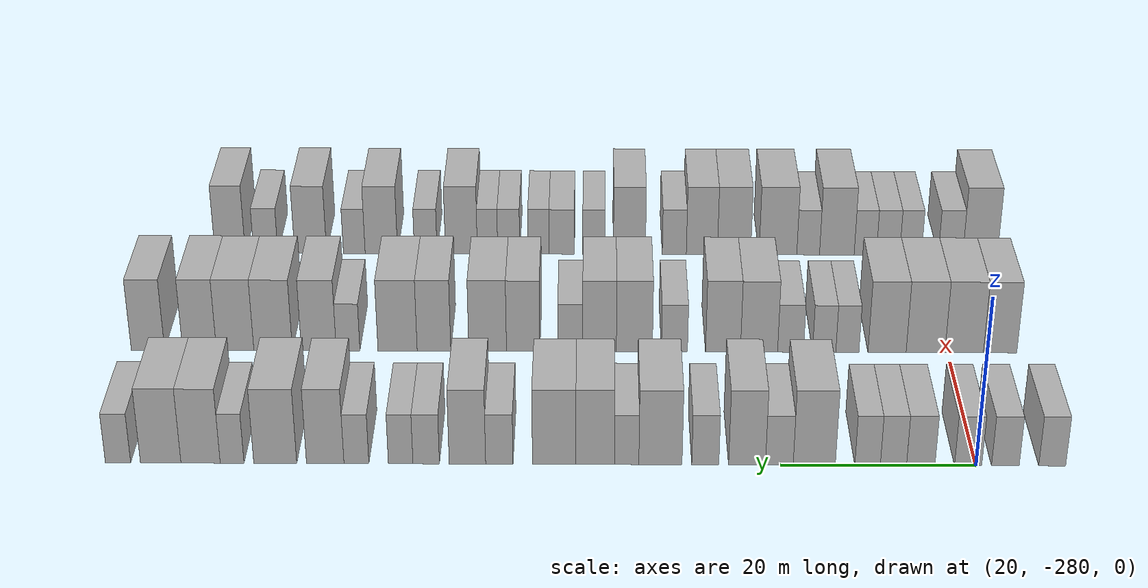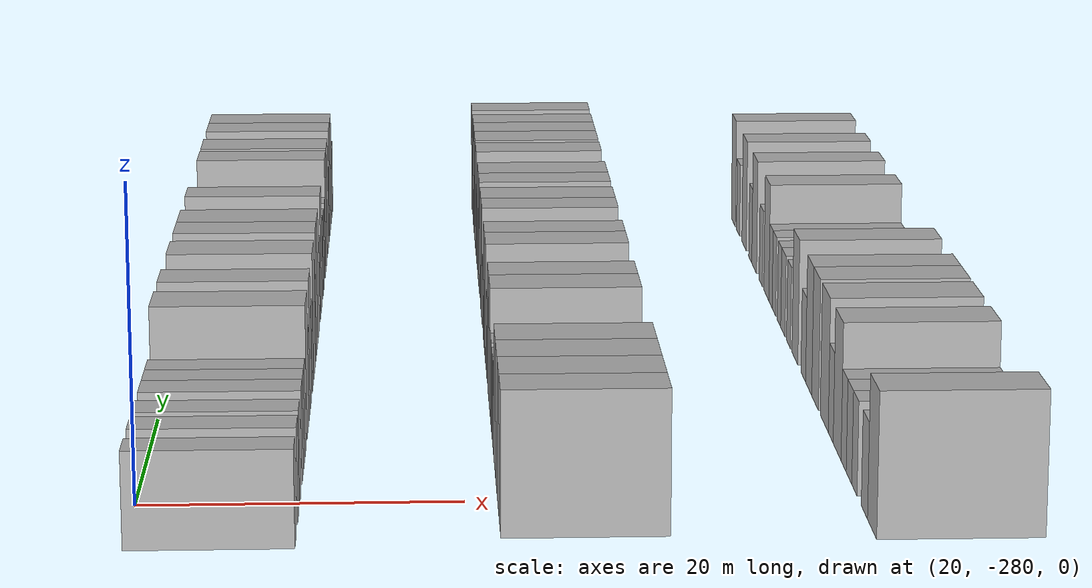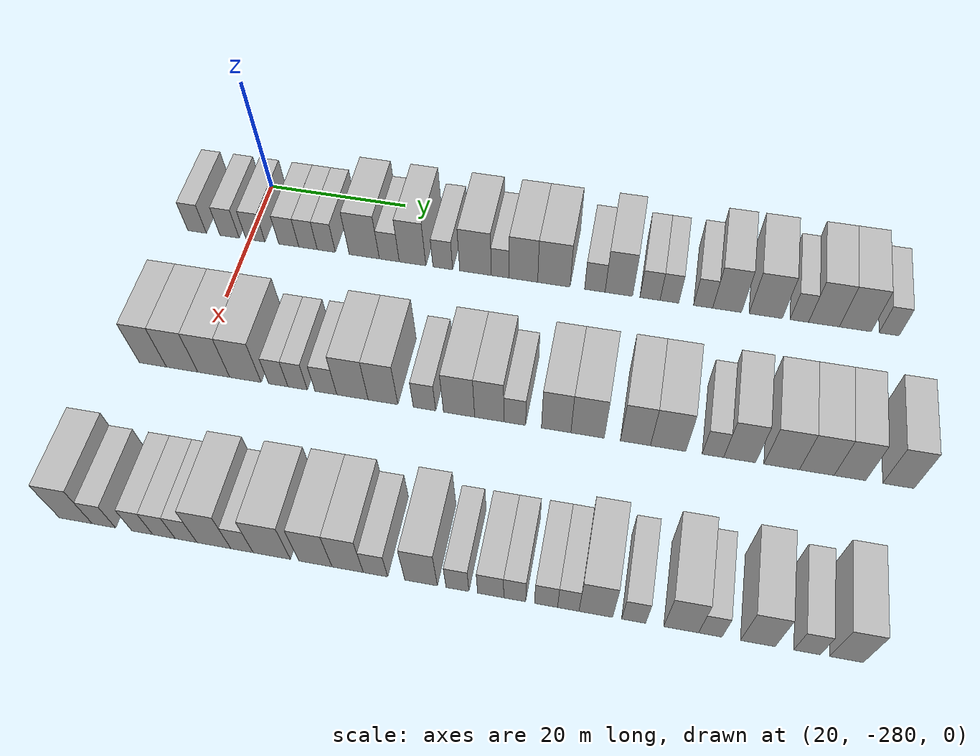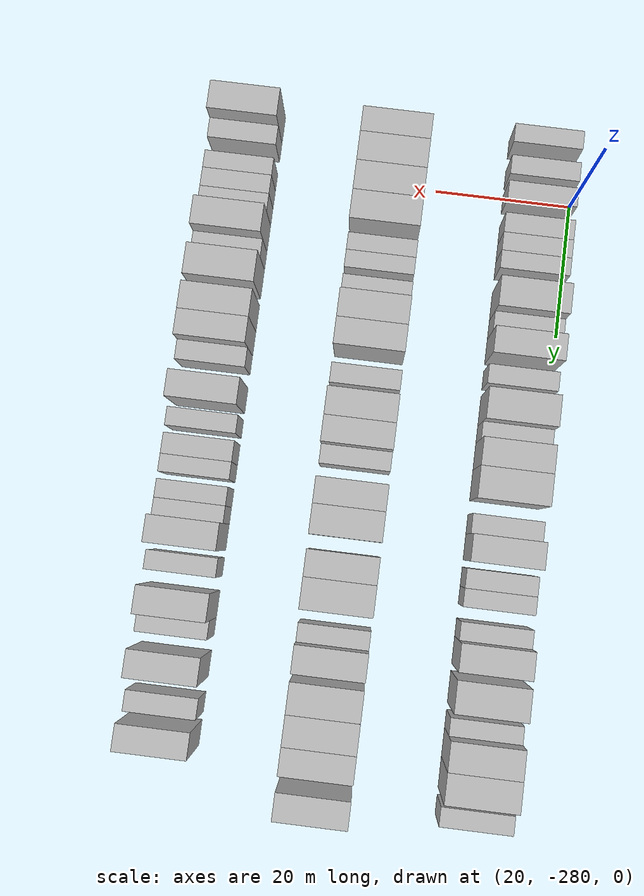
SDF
<sdf version="1.6">
 <world name="default">
  <model name="building_25">
   <static>1</static>
   <pose>25.0000 -287.8012 0 0.000000 0.000000 0.000000</pose>
   <link name="link">
    <pose>0 0 3.00 0 0 0</pose>
    <collision name="collision"><geometry><box><size>10.0000 2.7574 6.0000</size></box></geometry></collision>
    <visual name="visual">
     <cast_shadows>0</cast_shadows>
     <geometry><box><size>10.0000 2.7574 6.0000</size></box></geometry>
     <material>
      <script>
       <uri>model://HANNAS_wall/materials/scripts</uri>
       <uri>model://HANNAS_wall/materials/textures</uri>
       <name>vrc/HANNAS_wall</name>
      </script>
     </material>
    </visual>
   </link>
  </model>
  <model name="building_26">
   <static>1</static>
   <pose>25.0000 -283.0045 0 0.000000 0.000000 0.000000</pose>
   <link name="link">
    <pose>0 0 3.00 0 0 0</pose>
    <collision name="collision"><geometry><box><size>10.0000 2.8360 6.0000</size></box></geometry></collision>
    <visual name="visual">
     <cast_shadows>0</cast_shadows>
     <geometry><box><size>10.0000 2.8360 6.0000</size></box></geometry>
     <material>
      <script>
       <uri>model://HANNAS_wall/materials/scripts</uri>
       <uri>model://HANNAS_wall/materials/textures</uri>
       <name>vrc/HANNAS_wall</name>
      </script>
     </material>
    </visual>
   </link>
  </model>
  <model name="building_27">
   <static>1</static>
   <pose>25.0000 -279.1932 0 0.000000 0.000000 0.000000</pose>
   <link name="link">
    <pose>0 0 3.00 0 0 0</pose>
    <collision name="collision"><geometry><box><size>10.0000 2.7866 6.0000</size></box></geometry></collision>
    <visual name="visual">
     <cast_shadows>0</cast_shadows>
     <geometry><box><size>10.0000 2.7866 6.0000</size></box></geometry>
     <material>
      <script>
       <uri>model://HANNAS_wall/materials/scripts</uri>
       <uri>model://HANNAS_wall/materials/textures</uri>
       <name>vrc/HANNAS_wall</name>
      </script>
     </material>
    </visual>
   </link>
  </model>
  <model name="building_28">
   <static>1</static>
   <pose>25.0000 -274.3440 0 0.000000 0.000000 0.000000</pose>
   <link name="link">
    <pose>0 0 3.00 0 0 0</pose>
    <collision name="collision"><geometry><box><size>10.0000 2.9119 6.0000</size></box></geometry></collision>
    <visual name="visual">
     <cast_shadows>0</cast_shadows>
     <geometry><box><size>10.0000 2.9119 6.0000</size></box></geometry>
     <material>
      <script>
       <uri>model://HANNAS_wall/materials/scripts</uri>
       <uri>model://HANNAS_wall/materials/textures</uri>
       <name>vrc/HANNAS_wall</name>
      </script>
     </material>
    </visual>
   </link>
  </model>
  <model name="building_29">
   <static>1</static>
   <pose>25.0000 -271.5463 0 0.000000 0.000000 0.000000</pose>
   <link name="link">
    <pose>0 0 3.00 0 0 0</pose>
    <collision name="collision"><geometry><box><size>10.0000 2.6834 6.0000</size></box></geometry></collision>
    <visual name="visual">
     <cast_shadows>0</cast_shadows>
     <geometry><box><size>10.0000 2.6834 6.0000</size></box></geometry>
     <material>
      <script>
       <uri>model://HANNAS_wall/materials/scripts</uri>
       <uri>model://HANNAS_wall/materials/textures</uri>
       <name>vrc/HANNAS_wall</name>
      </script>
     </material>
    </visual>
   </link>
  </model>
  <model name="building_30">
   <static>1</static>
   <pose>25.0000 -268.8986 0 0.000000 0.000000 0.000000</pose>
   <link name="link">
    <pose>0 0 3.00 0 0 0</pose>
    <collision name="collision"><geometry><box><size>10.0000 2.6121 6.0000</size></box></geometry></collision>
    <visual name="visual">
     <cast_shadows>0</cast_shadows>
     <geometry><box><size>10.0000 2.6121 6.0000</size></box></geometry>
     <material>
      <script>
       <uri>model://HANNAS_wall/materials/scripts</uri>
       <uri>model://HANNAS_wall/materials/textures</uri>
       <name>vrc/HANNAS_wall</name>
      </script>
     </material>
    </visual>
   </link>
  </model>
  <model name="building_31">
   <static>1</static>
   <pose>25.0000 -263.4336 0 0.000000 0.000000 0.000000</pose>
   <link name="link">
    <pose>0 0 4.50 0 0 0</pose>
    <collision name="collision"><geometry><box><size>10.0000 4.3180 9.0000</size></box></geometry></collision>
    <visual name="visual">
     <cast_shadows>0</cast_shadows>
     <geometry><box><size>10.0000 4.3180 9.0000</size></box></geometry>
     <material>
      <script>
       <uri>model://HANNAS_wall/materials/scripts</uri>
       <uri>model://HANNAS_wall/materials/textures</uri>
       <name>vrc/HANNAS_wall</name>
      </script>
     </material>
    </visual>
   </link>
  </model>
  <model name="building_32">
   <static>1</static>
   <pose>25.0000 -259.8534 0 0.000000 0.000000 0.000000</pose>
   <link name="link">
    <pose>0 0 3.00 0 0 0</pose>
    <collision name="collision"><geometry><box><size>10.0000 2.8425 6.0000</size></box></geometry></collision>
    <visual name="visual">
     <cast_shadows>0</cast_shadows>
     <geometry><box><size>10.0000 2.8425 6.0000</size></box></geometry>
     <material>
      <script>
       <uri>model://HANNAS_wall/materials/scripts</uri>
       <uri>model://HANNAS_wall/materials/textures</uri>
       <name>vrc/HANNAS_wall</name>
      </script>
     </material>
    </visual>
   </link>
  </model>
  <model name="building_33">
   <static>1</static>
   <pose>25.0000 -256.5447 0 0.000000 0.000000 0.000000</pose>
   <link name="link">
    <pose>0 0 4.50 0 0 0</pose>
    <collision name="collision"><geometry><box><size>10.0000 3.7748 9.0000</size></box></geometry></collision>
    <visual name="visual">
     <cast_shadows>0</cast_shadows>
     <geometry><box><size>10.0000 3.7748 9.0000</size></box></geometry>
     <material>
      <script>
       <uri>model://HANNAS_wall/materials/scripts</uri>
       <uri>model://HANNAS_wall/materials/textures</uri>
       <name>vrc/HANNAS_wall</name>
      </script>
     </material>
    </visual>
   </link>
  </model>
  <model name="building_34">
   <static>1</static>
   <pose>25.0000 -252.2684 0 0.000000 0.000000 0.000000</pose>
   <link name="link">
    <pose>0 0 3.00 0 0 0</pose>
    <collision name="collision"><geometry><box><size>10.0000 2.7779 6.0000</size></box></geometry></collision>
    <visual name="visual">
     <cast_shadows>0</cast_shadows>
     <geometry><box><size>10.0000 2.7779 6.0000</size></box></geometry>
     <material>
      <script>
       <uri>model://HANNAS_wall/materials/scripts</uri>
       <uri>model://HANNAS_wall/materials/textures</uri>
       <name>vrc/HANNAS_wall</name>
      </script>
     </material>
    </visual>
   </link>
  </model>
  <model name="building_35">
   <static>1</static>
   <pose>25.0000 -247.6668 0 0.000000 0.000000 0.000000</pose>
   <link name="link">
    <pose>0 0 4.50 0 0 0</pose>
    <collision name="collision"><geometry><box><size>10.0000 4.4253 9.0000</size></box></geometry></collision>
    <visual name="visual">
     <cast_shadows>0</cast_shadows>
     <geometry><box><size>10.0000 4.4253 9.0000</size></box></geometry>
     <material>
      <script>
       <uri>model://HANNAS_wall/materials/scripts</uri>
       <uri>model://HANNAS_wall/materials/textures</uri>
       <name>vrc/HANNAS_wall</name>
      </script>
     </material>
    </visual>
   </link>
  </model>
  <model name="building_36">
   <static>1</static>
   <pose>25.0000 -244.2022 0 0.000000 0.000000 0.000000</pose>
   <link name="link">
    <pose>0 0 3.00 0 0 0</pose>
    <collision name="collision"><geometry><box><size>10.0000 2.5040 6.0000</size></box></geometry></collision>
    <visual name="visual">
     <cast_shadows>0</cast_shadows>
     <geometry><box><size>10.0000 2.5040 6.0000</size></box></geometry>
     <material>
      <script>
       <uri>model://HANNAS_wall/materials/scripts</uri>
       <uri>model://HANNAS_wall/materials/textures</uri>
       <name>vrc/HANNAS_wall</name>
      </script>
     </material>
    </visual>
   </link>
  </model>
  <model name="building_37">
   <static>1</static>
   <pose>25.0000 -240.9823 0 0.000000 0.000000 0.000000</pose>
   <link name="link">
    <pose>0 0 4.50 0 0 0</pose>
    <collision name="collision"><geometry><box><size>10.0000 3.9357 9.0000</size></box></geometry></collision>
    <visual name="visual">
     <cast_shadows>0</cast_shadows>
     <geometry><box><size>10.0000 3.9357 9.0000</size></box></geometry>
     <material>
      <script>
       <uri>model://HANNAS_wall/materials/scripts</uri>
       <uri>model://HANNAS_wall/materials/textures</uri>
       <name>vrc/HANNAS_wall</name>
      </script>
     </material>
    </visual>
   </link>
  </model>
  <model name="building_38">
   <static>1</static>
   <pose>25.0000 -236.7840 0 0.000000 0.000000 0.000000</pose>
   <link name="link">
    <pose>0 0 4.50 0 0 0</pose>
    <collision name="collision"><geometry><box><size>10.0000 4.4608 9.0000</size></box></geometry></collision>
    <visual name="visual">
     <cast_shadows>0</cast_shadows>
     <geometry><box><size>10.0000 4.4608 9.0000</size></box></geometry>
     <material>
      <script>
       <uri>model://HANNAS_wall/materials/scripts</uri>
       <uri>model://HANNAS_wall/materials/textures</uri>
       <name>vrc/HANNAS_wall</name>
      </script>
     </material>
    </visual>
   </link>
  </model>
  <model name="building_39">
   <static>1</static>
   <pose>25.0000 -231.1514 0 0.000000 0.000000 0.000000</pose>
   <link name="link">
    <pose>0 0 3.00 0 0 0</pose>
    <collision name="collision"><geometry><box><size>10.0000 2.8045 6.0000</size></box></geometry></collision>
    <visual name="visual">
     <cast_shadows>0</cast_shadows>
     <geometry><box><size>10.0000 2.8045 6.0000</size></box></geometry>
     <material>
      <script>
       <uri>model://HANNAS_wall/materials/scripts</uri>
       <uri>model://HANNAS_wall/materials/textures</uri>
       <name>vrc/HANNAS_wall</name>
      </script>
     </material>
    </visual>
   </link>
  </model>
  <model name="building_40">
   <static>1</static>
   <pose>25.0000 -227.8781 0 0.000000 0.000000 0.000000</pose>
   <link name="link">
    <pose>0 0 4.50 0 0 0</pose>
    <collision name="collision"><geometry><box><size>10.0000 3.7420 9.0000</size></box></geometry></collision>
    <visual name="visual">
     <cast_shadows>0</cast_shadows>
     <geometry><box><size>10.0000 3.7420 9.0000</size></box></geometry>
     <material>
      <script>
       <uri>model://HANNAS_wall/materials/scripts</uri>
       <uri>model://HANNAS_wall/materials/textures</uri>
       <name>vrc/HANNAS_wall</name>
      </script>
     </material>
    </visual>
   </link>
  </model>
  <model name="building_41">
   <static>1</static>
   <pose>25.0000 -223.6474 0 0.000000 0.000000 0.000000</pose>
   <link name="link">
    <pose>0 0 3.00 0 0 0</pose>
    <collision name="collision"><geometry><box><size>10.0000 2.7195 6.0000</size></box></geometry></collision>
    <visual name="visual">
     <cast_shadows>0</cast_shadows>
     <geometry><box><size>10.0000 2.7195 6.0000</size></box></geometry>
     <material>
      <script>
       <uri>model://HANNAS_wall/materials/scripts</uri>
       <uri>model://HANNAS_wall/materials/textures</uri>
       <name>vrc/HANNAS_wall</name>
      </script>
     </material>
    </visual>
   </link>
  </model>
  <model name="building_42">
   <static>1</static>
   <pose>25.0000 -221.0259 0 0.000000 0.000000 0.000000</pose>
   <link name="link">
    <pose>0 0 3.00 0 0 0</pose>
    <collision name="collision"><geometry><box><size>10.0000 2.5234 6.0000</size></box></geometry></collision>
    <visual name="visual">
     <cast_shadows>0</cast_shadows>
     <geometry><box><size>10.0000 2.5234 6.0000</size></box></geometry>
     <material>
      <script>
       <uri>model://HANNAS_wall/materials/scripts</uri>
       <uri>model://HANNAS_wall/materials/textures</uri>
       <name>vrc/HANNAS_wall</name>
      </script>
     </material>
    </visual>
   </link>
  </model>
  <model name="building_43">
   <static>1</static>
   <pose>25.0000 -216.4865 0 0.000000 0.000000 0.000000</pose>
   <link name="link">
    <pose>0 0 3.00 0 0 0</pose>
    <collision name="collision"><geometry><box><size>10.0000 2.5554 6.0000</size></box></geometry></collision>
    <visual name="visual">
     <cast_shadows>0</cast_shadows>
     <geometry><box><size>10.0000 2.5554 6.0000</size></box></geometry>
     <material>
      <script>
       <uri>model://HANNAS_wall/materials/scripts</uri>
       <uri>model://HANNAS_wall/materials/textures</uri>
       <name>vrc/HANNAS_wall</name>
      </script>
     </material>
    </visual>
   </link>
  </model>
  <model name="building_44">
   <static>1</static>
   <pose>25.0000 -213.2851 0 0.000000 0.000000 0.000000</pose>
   <link name="link">
    <pose>0 0 4.50 0 0 0</pose>
    <collision name="collision"><geometry><box><size>10.0000 3.8474 9.0000</size></box></geometry></collision>
    <visual name="visual">
     <cast_shadows>0</cast_shadows>
     <geometry><box><size>10.0000 3.8474 9.0000</size></box></geometry>
     <material>
      <script>
       <uri>model://HANNAS_wall/materials/scripts</uri>
       <uri>model://HANNAS_wall/materials/textures</uri>
       <name>vrc/HANNAS_wall</name>
      </script>
     </material>
    </visual>
   </link>
  </model>
  <model name="building_45">
   <static>1</static>
   <pose>25.0000 -208.1538 0 0.000000 0.000000 0.000000</pose>
   <link name="link">
    <pose>0 0 4.50 0 0 0</pose>
    <collision name="collision"><geometry><box><size>10.0000 4.4152 9.0000</size></box></geometry></collision>
    <visual name="visual">
     <cast_shadows>0</cast_shadows>
     <geometry><box><size>10.0000 4.4152 9.0000</size></box></geometry>
     <material>
      <script>
       <uri>model://HANNAS_wall/materials/scripts</uri>
       <uri>model://HANNAS_wall/materials/textures</uri>
       <name>vrc/HANNAS_wall</name>
      </script>
     </material>
    </visual>
   </link>
  </model>
  <model name="building_46">
   <static>1</static>
   <pose>25.0000 -203.7238 0 0.000000 0.000000 0.000000</pose>
   <link name="link">
    <pose>0 0 3.00 0 0 0</pose>
    <collision name="collision"><geometry><box><size>10.0000 2.4449 6.0000</size></box></geometry></collision>
    <visual name="visual">
     <cast_shadows>0</cast_shadows>
     <geometry><box><size>10.0000 2.4449 6.0000</size></box></geometry>
     <material>
      <script>
       <uri>model://HANNAS_wall/materials/scripts</uri>
       <uri>model://HANNAS_wall/materials/textures</uri>
       <name>vrc/HANNAS_wall</name>
      </script>
     </material>
    </visual>
   </link>
  </model>
  <model name="building_47">
   <static>1</static>
   <pose>25.0000 -200.4851 0 0.000000 0.000000 0.000000</pose>
   <link name="link">
    <pose>0 0 4.50 0 0 0</pose>
    <collision name="collision"><geometry><box><size>10.0000 4.0324 9.0000</size></box></geometry></collision>
    <visual name="visual">
     <cast_shadows>0</cast_shadows>
     <geometry><box><size>10.0000 4.0324 9.0000</size></box></geometry>
     <material>
      <script>
       <uri>model://HANNAS_wall/materials/scripts</uri>
       <uri>model://HANNAS_wall/materials/textures</uri>
       <name>vrc/HANNAS_wall</name>
      </script>
     </material>
    </visual>
   </link>
  </model>
  <model name="building_48">
   <static>1</static>
   <pose>25.0000 -196.3870 0 0.000000 0.000000 0.000000</pose>
   <link name="link">
    <pose>0 0 4.50 0 0 0</pose>
    <collision name="collision"><geometry><box><size>10.0000 4.1639 9.0000</size></box></geometry></collision>
    <visual name="visual">
     <cast_shadows>0</cast_shadows>
     <geometry><box><size>10.0000 4.1639 9.0000</size></box></geometry>
     <material>
      <script>
       <uri>model://HANNAS_wall/materials/scripts</uri>
       <uri>model://HANNAS_wall/materials/textures</uri>
       <name>vrc/HANNAS_wall</name>
      </script>
     </material>
    </visual>
   </link>
  </model>
  <model name="building_49">
   <static>1</static>
   <pose>25.0000 -192.0062 0 0.000000 0.000000 0.000000</pose>
   <link name="link">
    <pose>0 0 3.00 0 0 0</pose>
    <collision name="collision"><geometry><box><size>10.0000 2.5976 6.0000</size></box></geometry></collision>
    <visual name="visual">
     <cast_shadows>0</cast_shadows>
     <geometry><box><size>10.0000 2.5976 6.0000</size></box></geometry>
     <material>
      <script>
       <uri>model://HANNAS_wall/materials/scripts</uri>
       <uri>model://HANNAS_wall/materials/textures</uri>
       <name>vrc/HANNAS_wall</name>
      </script>
     </material>
    </visual>
   </link>
  </model>
  <model name="building_223">
   <static>1</static>
   <pose>47.0000 -285.7615 0 0.000000 0.000000 0.000000</pose>
   <link name="link">
    <pose>0 0 4.50 0 0 0</pose>
    <collision name="collision"><geometry><box><size>10.0000 3.6978 9.0000</size></box></geometry></collision>
    <visual name="visual">
     <cast_shadows>0</cast_shadows>
     <geometry><box><size>10.0000 3.6978 9.0000</size></box></geometry>
     <material>
      <script>
       <uri>model://HANNAS_wall/materials/scripts</uri>
       <uri>model://HANNAS_wall/materials/textures</uri>
       <name>vrc/HANNAS_wall</name>
      </script>
     </material>
    </visual>
   </link>
  </model>
  <model name="building_224">
   <static>1</static>
   <pose>47.0000 -281.7863 0 0.000000 0.000000 0.000000</pose>
   <link name="link">
    <pose>0 0 4.50 0 0 0</pose>
    <collision name="collision"><geometry><box><size>10.0000 4.2527 9.0000</size></box></geometry></collision>
    <visual name="visual">
     <cast_shadows>0</cast_shadows>
     <geometry><box><size>10.0000 4.2527 9.0000</size></box></geometry>
     <material>
      <script>
       <uri>model://HANNAS_wall/materials/scripts</uri>
       <uri>model://HANNAS_wall/materials/textures</uri>
       <name>vrc/HANNAS_wall</name>
      </script>
     </material>
    </visual>
   </link>
  </model>
  <model name="building_225">
   <static>1</static>
   <pose>47.0000 -277.5165 0 0.000000 0.000000 0.000000</pose>
   <link name="link">
    <pose>0 0 4.50 0 0 0</pose>
    <collision name="collision"><geometry><box><size>10.0000 4.2868 9.0000</size></box></geometry></collision>
    <visual name="visual">
     <cast_shadows>0</cast_shadows>
     <geometry><box><size>10.0000 4.2868 9.0000</size></box></geometry>
     <material>
      <script>
       <uri>model://HANNAS_wall/materials/scripts</uri>
       <uri>model://HANNAS_wall/materials/textures</uri>
       <name>vrc/HANNAS_wall</name>
      </script>
     </material>
    </visual>
   </link>
  </model>
  <model name="building_226">
   <static>1</static>
   <pose>47.0000 -273.2656 0 0.000000 0.000000 0.000000</pose>
   <link name="link">
    <pose>0 0 4.50 0 0 0</pose>
    <collision name="collision"><geometry><box><size>10.0000 4.2149 9.0000</size></box></geometry></collision>
    <visual name="visual">
     <cast_shadows>0</cast_shadows>
     <geometry><box><size>10.0000 4.2149 9.0000</size></box></geometry>
     <material>
      <script>
       <uri>model://HANNAS_wall/materials/scripts</uri>
       <uri>model://HANNAS_wall/materials/textures</uri>
       <name>vrc/HANNAS_wall</name>
      </script>
     </material>
    </visual>
   </link>
  </model>
  <model name="building_227">
   <static>1</static>
   <pose>47.0000 -268.8767 0 0.000000 0.000000 0.000000</pose>
   <link name="link">
    <pose>0 0 3.00 0 0 0</pose>
    <collision name="collision"><geometry><box><size>10.0000 2.5628 6.0000</size></box></geometry></collision>
    <visual name="visual">
     <cast_shadows>0</cast_shadows>
     <geometry><box><size>10.0000 2.5628 6.0000</size></box></geometry>
     <material>
      <script>
       <uri>model://HANNAS_wall/materials/scripts</uri>
       <uri>model://HANNAS_wall/materials/textures</uri>
       <name>vrc/HANNAS_wall</name>
      </script>
     </material>
    </visual>
   </link>
  </model>
  <model name="building_228">
   <static>1</static>
   <pose>47.0000 -266.3102 0 0.000000 0.000000 0.000000</pose>
   <link name="link">
    <pose>0 0 3.00 0 0 0</pose>
    <collision name="collision"><geometry><box><size>10.0000 2.5703 6.0000</size></box></geometry></collision>
    <visual name="visual">
     <cast_shadows>0</cast_shadows>
     <geometry><box><size>10.0000 2.5703 6.0000</size></box></geometry>
     <material>
      <script>
       <uri>model://HANNAS_wall/materials/scripts</uri>
       <uri>model://HANNAS_wall/materials/textures</uri>
       <name>vrc/HANNAS_wall</name>
      </script>
     </material>
    </visual>
   </link>
  </model>
  <model name="building_229">
   <static>1</static>
   <pose>47.0000 -262.5898 0 0.000000 0.000000 0.000000</pose>
   <link name="link">
    <pose>0 0 3.00 0 0 0</pose>
    <collision name="collision"><geometry><box><size>10.0000 2.8704 6.0000</size></box></geometry></collision>
    <visual name="visual">
     <cast_shadows>0</cast_shadows>
     <geometry><box><size>10.0000 2.8704 6.0000</size></box></geometry>
     <material>
      <script>
       <uri>model://HANNAS_wall/materials/scripts</uri>
       <uri>model://HANNAS_wall/materials/textures</uri>
       <name>vrc/HANNAS_wall</name>
      </script>
     </material>
    </visual>
   </link>
  </model>
  <model name="building_230">
   <static>1</static>
   <pose>47.0000 -259.1013 0 0.000000 0.000000 0.000000</pose>
   <link name="link">
    <pose>0 0 4.50 0 0 0</pose>
    <collision name="collision"><geometry><box><size>10.0000 4.1066 9.0000</size></box></geometry></collision>
    <visual name="visual">
     <cast_shadows>0</cast_shadows>
     <geometry><box><size>10.0000 4.1066 9.0000</size></box></geometry>
     <material>
      <script>
       <uri>model://HANNAS_wall/materials/scripts</uri>
       <uri>model://HANNAS_wall/materials/textures</uri>
       <name>vrc/HANNAS_wall</name>
      </script>
     </material>
    </visual>
   </link>
  </model>
  <model name="building_231">
   <static>1</static>
   <pose>47.0000 -255.1177 0 0.000000 0.000000 0.000000</pose>
   <link name="link">
    <pose>0 0 4.50 0 0 0</pose>
    <collision name="collision"><geometry><box><size>10.0000 3.8608 9.0000</size></box></geometry></collision>
    <visual name="visual">
     <cast_shadows>0</cast_shadows>
     <geometry><box><size>10.0000 3.8608 9.0000</size></box></geometry>
     <material>
      <script>
       <uri>model://HANNAS_wall/materials/scripts</uri>
       <uri>model://HANNAS_wall/materials/textures</uri>
       <name>vrc/HANNAS_wall</name>
      </script>
     </material>
    </visual>
   </link>
  </model>
  <model name="building_232">
   <static>1</static>
   <pose>47.0000 -249.7445 0 0.000000 0.000000 0.000000</pose>
   <link name="link">
    <pose>0 0 3.00 0 0 0</pose>
    <collision name="collision"><geometry><box><size>10.0000 2.8855 6.0000</size></box></geometry></collision>
    <visual name="visual">
     <cast_shadows>0</cast_shadows>
     <geometry><box><size>10.0000 2.8855 6.0000</size></box></geometry>
     <material>
      <script>
       <uri>model://HANNAS_wall/materials/scripts</uri>
       <uri>model://HANNAS_wall/materials/textures</uri>
       <name>vrc/HANNAS_wall</name>
      </script>
     </material>
    </visual>
   </link>
  </model>
  <model name="building_233">
   <static>1</static>
   <pose>47.0000 -245.3068 0 0.000000 0.000000 0.000000</pose>
   <link name="link">
    <pose>0 0 4.50 0 0 0</pose>
    <collision name="collision"><geometry><box><size>10.0000 3.9901 9.0000</size></box></geometry></collision>
    <visual name="visual">
     <cast_shadows>0</cast_shadows>
     <geometry><box><size>10.0000 3.9901 9.0000</size></box></geometry>
     <material>
      <script>
       <uri>model://HANNAS_wall/materials/scripts</uri>
       <uri>model://HANNAS_wall/materials/textures</uri>
       <name>vrc/HANNAS_wall</name>
      </script>
     </material>
    </visual>
   </link>
  </model>
  <model name="building_234">
   <static>1</static>
   <pose>47.0000 -241.4539 0 0.000000 0.000000 0.000000</pose>
   <link name="link">
    <pose>0 0 4.50 0 0 0</pose>
    <collision name="collision"><geometry><box><size>10.0000 3.7157 9.0000</size></box></geometry></collision>
    <visual name="visual">
     <cast_shadows>0</cast_shadows>
     <geometry><box><size>10.0000 3.7157 9.0000</size></box></geometry>
     <material>
      <script>
       <uri>model://HANNAS_wall/materials/scripts</uri>
       <uri>model://HANNAS_wall/materials/textures</uri>
       <name>vrc/HANNAS_wall</name>
      </script>
     </material>
    </visual>
   </link>
  </model>
  <model name="building_235">
   <static>1</static>
   <pose>47.0000 -238.2213 0 0.000000 0.000000 0.000000</pose>
   <link name="link">
    <pose>0 0 3.00 0 0 0</pose>
    <collision name="collision"><geometry><box><size>10.0000 2.7494 6.0000</size></box></geometry></collision>
    <visual name="visual">
     <cast_shadows>0</cast_shadows>
     <geometry><box><size>10.0000 2.7494 6.0000</size></box></geometry>
     <material>
      <script>
       <uri>model://HANNAS_wall/materials/scripts</uri>
       <uri>model://HANNAS_wall/materials/textures</uri>
       <name>vrc/HANNAS_wall</name>
      </script>
     </material>
    </visual>
   </link>
  </model>
  <model name="building_236">
   <static>1</static>
   <pose>47.0000 -233.0009 0 0.000000 0.000000 0.000000</pose>
   <link name="link">
    <pose>0 0 4.50 0 0 0</pose>
    <collision name="collision"><geometry><box><size>10.0000 3.6914 9.0000</size></box></geometry></collision>
    <visual name="visual">
     <cast_shadows>0</cast_shadows>
     <geometry><box><size>10.0000 3.6914 9.0000</size></box></geometry>
     <material>
      <script>
       <uri>model://HANNAS_wall/materials/scripts</uri>
       <uri>model://HANNAS_wall/materials/textures</uri>
       <name>vrc/HANNAS_wall</name>
      </script>
     </material>
    </visual>
   </link>
  </model>
  <model name="building_237">
   <static>1</static>
   <pose>47.0000 -229.0706 0 0.000000 0.000000 0.000000</pose>
   <link name="link">
    <pose>0 0 4.50 0 0 0</pose>
    <collision name="collision"><geometry><box><size>10.0000 4.1693 9.0000</size></box></geometry></collision>
    <visual name="visual">
     <cast_shadows>0</cast_shadows>
     <geometry><box><size>10.0000 4.1693 9.0000</size></box></geometry>
     <material>
      <script>
       <uri>model://HANNAS_wall/materials/scripts</uri>
       <uri>model://HANNAS_wall/materials/textures</uri>
       <name>vrc/HANNAS_wall</name>
      </script>
     </material>
    </visual>
   </link>
  </model>
  <model name="building_238">
   <static>1</static>
   <pose>47.0000 -223.1233 0 0.000000 0.000000 0.000000</pose>
   <link name="link">
    <pose>0 0 4.50 0 0 0</pose>
    <collision name="collision"><geometry><box><size>10.0000 3.7253 9.0000</size></box></geometry></collision>
    <visual name="visual">
     <cast_shadows>0</cast_shadows>
     <geometry><box><size>10.0000 3.7253 9.0000</size></box></geometry>
     <material>
      <script>
       <uri>model://HANNAS_wall/materials/scripts</uri>
       <uri>model://HANNAS_wall/materials/textures</uri>
       <name>vrc/HANNAS_wall</name>
      </script>
     </material>
    </visual>
   </link>
  </model>
  <model name="building_239">
   <static>1</static>
   <pose>47.0000 -219.0904 0 0.000000 0.000000 0.000000</pose>
   <link name="link">
    <pose>0 0 4.50 0 0 0</pose>
    <collision name="collision"><geometry><box><size>10.0000 4.3405 9.0000</size></box></geometry></collision>
    <visual name="visual">
     <cast_shadows>0</cast_shadows>
     <geometry><box><size>10.0000 4.3405 9.0000</size></box></geometry>
     <material>
      <script>
       <uri>model://HANNAS_wall/materials/scripts</uri>
       <uri>model://HANNAS_wall/materials/textures</uri>
       <name>vrc/HANNAS_wall</name>
      </script>
     </material>
    </visual>
   </link>
  </model>
  <model name="building_240">
   <static>1</static>
   <pose>47.0000 -213.6100 0 0.000000 0.000000 0.000000</pose>
   <link name="link">
    <pose>0 0 3.00 0 0 0</pose>
    <collision name="collision"><geometry><box><size>10.0000 2.6202 6.0000</size></box></geometry></collision>
    <visual name="visual">
     <cast_shadows>0</cast_shadows>
     <geometry><box><size>10.0000 2.6202 6.0000</size></box></geometry>
     <material>
      <script>
       <uri>model://HANNAS_wall/materials/scripts</uri>
       <uri>model://HANNAS_wall/materials/textures</uri>
       <name>vrc/HANNAS_wall</name>
      </script>
     </material>
    </visual>
   </link>
  </model>
  <model name="building_241">
   <static>1</static>
   <pose>47.0000 -210.3666 0 0.000000 0.000000 0.000000</pose>
   <link name="link">
    <pose>0 0 4.50 0 0 0</pose>
    <collision name="collision"><geometry><box><size>10.0000 3.8666 9.0000</size></box></geometry></collision>
    <visual name="visual">
     <cast_shadows>0</cast_shadows>
     <geometry><box><size>10.0000 3.8666 9.0000</size></box></geometry>
     <material>
      <script>
       <uri>model://HANNAS_wall/materials/scripts</uri>
       <uri>model://HANNAS_wall/materials/textures</uri>
       <name>vrc/HANNAS_wall</name>
      </script>
     </material>
    </visual>
   </link>
  </model>
  <model name="building_242">
   <static>1</static>
   <pose>47.0000 -205.2976 0 0.000000 0.000000 0.000000</pose>
   <link name="link">
    <pose>0 0 4.50 0 0 0</pose>
    <collision name="collision"><geometry><box><size>10.0000 4.2715 9.0000</size></box></geometry></collision>
    <visual name="visual">
     <cast_shadows>0</cast_shadows>
     <geometry><box><size>10.0000 4.2715 9.0000</size></box></geometry>
     <material>
      <script>
       <uri>model://HANNAS_wall/materials/scripts</uri>
       <uri>model://HANNAS_wall/materials/textures</uri>
       <name>vrc/HANNAS_wall</name>
      </script>
     </material>
    </visual>
   </link>
  </model>
  <model name="building_243">
   <static>1</static>
   <pose>47.0000 -201.0855 0 0.000000 0.000000 0.000000</pose>
   <link name="link">
    <pose>0 0 4.50 0 0 0</pose>
    <collision name="collision"><geometry><box><size>10.0000 4.1526 9.0000</size></box></geometry></collision>
    <visual name="visual">
     <cast_shadows>0</cast_shadows>
     <geometry><box><size>10.0000 4.1526 9.0000</size></box></geometry>
     <material>
      <script>
       <uri>model://HANNAS_wall/materials/scripts</uri>
       <uri>model://HANNAS_wall/materials/textures</uri>
       <name>vrc/HANNAS_wall</name>
      </script>
     </material>
    </visual>
   </link>
  </model>
  <model name="building_244">
   <static>1</static>
   <pose>47.0000 -197.1378 0 0.000000 0.000000 0.000000</pose>
   <link name="link">
    <pose>0 0 4.50 0 0 0</pose>
    <collision name="collision"><geometry><box><size>10.0000 3.7427 9.0000</size></box></geometry></collision>
    <visual name="visual">
     <cast_shadows>0</cast_shadows>
     <geometry><box><size>10.0000 3.7427 9.0000</size></box></geometry>
     <material>
      <script>
       <uri>model://HANNAS_wall/materials/scripts</uri>
       <uri>model://HANNAS_wall/materials/textures</uri>
       <name>vrc/HANNAS_wall</name>
      </script>
     </material>
    </visual>
   </link>
  </model>
  <model name="building_245">
   <static>1</static>
   <pose>47.0000 -191.4170 0 0.000000 0.000000 0.000000</pose>
   <link name="link">
    <pose>0 0 4.50 0 0 0</pose>
    <collision name="collision"><geometry><box><size>10.0000 3.6990 9.0000</size></box></geometry></collision>
    <visual name="visual">
     <cast_shadows>0</cast_shadows>
     <geometry><box><size>10.0000 3.6990 9.0000</size></box></geometry>
     <material>
      <script>
       <uri>model://HANNAS_wall/materials/scripts</uri>
       <uri>model://HANNAS_wall/materials/textures</uri>
       <name>vrc/HANNAS_wall</name>
      </script>
     </material>
    </visual>
   </link>
  </model>
  <model name="building_422">
   <static>1</static>
   <pose>69.0000 -286.6836 0 0.000000 0.000000 0.000000</pose>
   <link name="link">
    <pose>0 0 4.50 0 0 0</pose>
    <collision name="collision"><geometry><box><size>10.0000 4.1136 9.0000</size></box></geometry></collision>
    <visual name="visual">
     <cast_shadows>0</cast_shadows>
     <geometry><box><size>10.0000 4.1136 9.0000</size></box></geometry>
     <material>
      <script>
       <uri>model://HANNAS_wall/materials/scripts</uri>
       <uri>model://HANNAS_wall/materials/textures</uri>
       <name>vrc/HANNAS_wall</name>
      </script>
     </material>
    </visual>
   </link>
  </model>
  <model name="building_423">
   <static>1</static>
   <pose>69.0000 -283.1752 0 0.000000 0.000000 0.000000</pose>
   <link name="link">
    <pose>0 0 3.00 0 0 0</pose>
    <collision name="collision"><geometry><box><size>10.0000 2.9033 6.0000</size></box></geometry></collision>
    <visual name="visual">
     <cast_shadows>0</cast_shadows>
     <geometry><box><size>10.0000 2.9033 6.0000</size></box></geometry>
     <material>
      <script>
       <uri>model://HANNAS_wall/materials/scripts</uri>
       <uri>model://HANNAS_wall/materials/textures</uri>
       <name>vrc/HANNAS_wall</name>
      </script>
     </material>
    </visual>
   </link>
  </model>
  <model name="building_424">
   <static>1</static>
   <pose>69.0000 -278.4300 0 0.000000 0.000000 0.000000</pose>
   <link name="link">
    <pose>0 0 3.00 0 0 0</pose>
    <collision name="collision"><geometry><box><size>10.0000 2.5872 6.0000</size></box></geometry></collision>
    <visual name="visual">
     <cast_shadows>0</cast_shadows>
     <geometry><box><size>10.0000 2.5872 6.0000</size></box></geometry>
     <material>
      <script>
       <uri>model://HANNAS_wall/materials/scripts</uri>
       <uri>model://HANNAS_wall/materials/textures</uri>
       <name>vrc/HANNAS_wall</name>
      </script>
     </material>
    </visual>
   </link>
  </model>
  <model name="building_425">
   <static>1</static>
   <pose>69.0000 -275.7557 0 0.000000 0.000000 0.000000</pose>
   <link name="link">
    <pose>0 0 3.00 0 0 0</pose>
    <collision name="collision"><geometry><box><size>10.0000 2.7615 6.0000</size></box></geometry></collision>
    <visual name="visual">
     <cast_shadows>0</cast_shadows>
     <geometry><box><size>10.0000 2.7615 6.0000</size></box></geometry>
     <material>
      <script>
       <uri>model://HANNAS_wall/materials/scripts</uri>
       <uri>model://HANNAS_wall/materials/textures</uri>
       <name>vrc/HANNAS_wall</name>
      </script>
     </material>
    </visual>
   </link>
  </model>
  <model name="building_426">
   <static>1</static>
   <pose>69.0000 -273.0533 0 0.000000 0.000000 0.000000</pose>
   <link name="link">
    <pose>0 0 3.00 0 0 0</pose>
    <collision name="collision"><geometry><box><size>10.0000 2.6433 6.0000</size></box></geometry></collision>
    <visual name="visual">
     <cast_shadows>0</cast_shadows>
     <geometry><box><size>10.0000 2.6433 6.0000</size></box></geometry>
     <material>
      <script>
       <uri>model://HANNAS_wall/materials/scripts</uri>
       <uri>model://HANNAS_wall/materials/textures</uri>
       <name>vrc/HANNAS_wall</name>
      </script>
     </material>
    </visual>
   </link>
  </model>
  <model name="building_427">
   <static>1</static>
   <pose>69.0000 -269.6740 0 0.000000 0.000000 0.000000</pose>
   <link name="link">
    <pose>0 0 4.50 0 0 0</pose>
    <collision name="collision"><geometry><box><size>10.0000 4.1152 9.0000</size></box></geometry></collision>
    <visual name="visual">
     <cast_shadows>0</cast_shadows>
     <geometry><box><size>10.0000 4.1152 9.0000</size></box></geometry>
     <material>
      <script>
       <uri>model://HANNAS_wall/materials/scripts</uri>
       <uri>model://HANNAS_wall/materials/textures</uri>
       <name>vrc/HANNAS_wall</name>
      </script>
     </material>
    </visual>
   </link>
  </model>
  <model name="building_428">
   <static>1</static>
   <pose>69.0000 -266.2665 0 0.000000 0.000000 0.000000</pose>
   <link name="link">
    <pose>0 0 3.00 0 0 0</pose>
    <collision name="collision"><geometry><box><size>10.0000 2.7000 6.0000</size></box></geometry></collision>
    <visual name="visual">
     <cast_shadows>0</cast_shadows>
     <geometry><box><size>10.0000 2.7000 6.0000</size></box></geometry>
     <material>
      <script>
       <uri>model://HANNAS_wall/materials/scripts</uri>
       <uri>model://HANNAS_wall/materials/textures</uri>
       <name>vrc/HANNAS_wall</name>
      </script>
     </material>
    </visual>
   </link>
  </model>
  <model name="building_429">
   <static>1</static>
   <pose>69.0000 -262.6769 0 0.000000 0.000000 0.000000</pose>
   <link name="link">
    <pose>0 0 4.50 0 0 0</pose>
    <collision name="collision"><geometry><box><size>10.0000 4.4792 9.0000</size></box></geometry></collision>
    <visual name="visual">
     <cast_shadows>0</cast_shadows>
     <geometry><box><size>10.0000 4.4792 9.0000</size></box></geometry>
     <material>
      <script>
       <uri>model://HANNAS_wall/materials/scripts</uri>
       <uri>model://HANNAS_wall/materials/textures</uri>
       <name>vrc/HANNAS_wall</name>
      </script>
     </material>
    </visual>
   </link>
  </model>
  <model name="building_430">
   <static>1</static>
   <pose>69.0000 -257.4593 0 0.000000 0.000000 0.000000</pose>
   <link name="link">
    <pose>0 0 4.50 0 0 0</pose>
    <collision name="collision"><geometry><box><size>10.0000 3.9559 9.0000</size></box></geometry></collision>
    <visual name="visual">
     <cast_shadows>0</cast_shadows>
     <geometry><box><size>10.0000 3.9559 9.0000</size></box></geometry>
     <material>
      <script>
       <uri>model://HANNAS_wall/materials/scripts</uri>
       <uri>model://HANNAS_wall/materials/textures</uri>
       <name>vrc/HANNAS_wall</name>
      </script>
     </material>
    </visual>
   </link>
  </model>
  <model name="building_431">
   <static>1</static>
   <pose>69.0000 -253.6368 0 0.000000 0.000000 0.000000</pose>
   <link name="link">
    <pose>0 0 4.50 0 0 0</pose>
    <collision name="collision"><geometry><box><size>10.0000 3.6892 9.0000</size></box></geometry></collision>
    <visual name="visual">
     <cast_shadows>0</cast_shadows>
     <geometry><box><size>10.0000 3.6892 9.0000</size></box></geometry>
     <material>
      <script>
       <uri>model://HANNAS_wall/materials/scripts</uri>
       <uri>model://HANNAS_wall/materials/textures</uri>
       <name>vrc/HANNAS_wall</name>
      </script>
     </material>
    </visual>
   </link>
  </model>
  <model name="building_432">
   <static>1</static>
   <pose>69.0000 -250.3639 0 0.000000 0.000000 0.000000</pose>
   <link name="link">
    <pose>0 0 3.00 0 0 0</pose>
    <collision name="collision"><geometry><box><size>10.0000 2.8566 6.0000</size></box></geometry></collision>
    <visual name="visual">
     <cast_shadows>0</cast_shadows>
     <geometry><box><size>10.0000 2.8566 6.0000</size></box></geometry>
     <material>
      <script>
       <uri>model://HANNAS_wall/materials/scripts</uri>
       <uri>model://HANNAS_wall/materials/textures</uri>
       <name>vrc/HANNAS_wall</name>
      </script>
     </material>
    </visual>
   </link>
  </model>
  <model name="building_433">
   <static>1</static>
   <pose>69.0000 -245.0361 0 0.000000 0.000000 0.000000</pose>
   <link name="link">
    <pose>0 0 4.50 0 0 0</pose>
    <collision name="collision"><geometry><box><size>10.0000 3.7990 9.0000</size></box></geometry></collision>
    <visual name="visual">
     <cast_shadows>0</cast_shadows>
     <geometry><box><size>10.0000 3.7990 9.0000</size></box></geometry>
     <material>
      <script>
       <uri>model://HANNAS_wall/materials/scripts</uri>
       <uri>model://HANNAS_wall/materials/textures</uri>
       <name>vrc/HANNAS_wall</name>
      </script>
     </material>
    </visual>
   </link>
  </model>
  <model name="building_434">
   <static>1</static>
   <pose>69.0000 -240.8157 0 0.000000 0.000000 0.000000</pose>
   <link name="link">
    <pose>0 0 3.00 0 0 0</pose>
    <collision name="collision"><geometry><box><size>10.0000 2.6418 6.0000</size></box></geometry></collision>
    <visual name="visual">
     <cast_shadows>0</cast_shadows>
     <geometry><box><size>10.0000 2.6418 6.0000</size></box></geometry>
     <material>
      <script>
       <uri>model://HANNAS_wall/materials/scripts</uri>
       <uri>model://HANNAS_wall/materials/textures</uri>
       <name>vrc/HANNAS_wall</name>
      </script>
     </material>
    </visual>
   </link>
  </model>
  <model name="building_435">
   <static>1</static>
   <pose>69.0000 -236.9983 0 0.000000 0.000000 0.000000</pose>
   <link name="link">
    <pose>0 0 3.00 0 0 0</pose>
    <collision name="collision"><geometry><box><size>10.0000 2.9929 6.0000</size></box></geometry></collision>
    <visual name="visual">
     <cast_shadows>0</cast_shadows>
     <geometry><box><size>10.0000 2.9929 6.0000</size></box></geometry>
     <material>
      <script>
       <uri>model://HANNAS_wall/materials/scripts</uri>
       <uri>model://HANNAS_wall/materials/textures</uri>
       <name>vrc/HANNAS_wall</name>
      </script>
     </material>
    </visual>
   </link>
  </model>
  <model name="building_436">
   <static>1</static>
   <pose>69.0000 -234.2488 0 0.000000 0.000000 0.000000</pose>
   <link name="link">
    <pose>0 0 3.00 0 0 0</pose>
    <collision name="collision"><geometry><box><size>10.0000 2.5062 6.0000</size></box></geometry></collision>
    <visual name="visual">
     <cast_shadows>0</cast_shadows>
     <geometry><box><size>10.0000 2.5062 6.0000</size></box></geometry>
     <material>
      <script>
       <uri>model://HANNAS_wall/materials/scripts</uri>
       <uri>model://HANNAS_wall/materials/textures</uri>
       <name>vrc/HANNAS_wall</name>
      </script>
     </material>
    </visual>
   </link>
  </model>
  <model name="building_437">
   <static>1</static>
   <pose>69.0000 -230.6857 0 0.000000 0.000000 0.000000</pose>
   <link name="link">
    <pose>0 0 3.00 0 0 0</pose>
    <collision name="collision"><geometry><box><size>10.0000 2.6199 6.0000</size></box></geometry></collision>
    <visual name="visual">
     <cast_shadows>0</cast_shadows>
     <geometry><box><size>10.0000 2.6199 6.0000</size></box></geometry>
     <material>
      <script>
       <uri>model://HANNAS_wall/materials/scripts</uri>
       <uri>model://HANNAS_wall/materials/textures</uri>
       <name>vrc/HANNAS_wall</name>
      </script>
     </material>
    </visual>
   </link>
  </model>
  <model name="building_438">
   <static>1</static>
   <pose>69.0000 -228.1661 0 0.000000 0.000000 0.000000</pose>
   <link name="link">
    <pose>0 0 3.00 0 0 0</pose>
    <collision name="collision"><geometry><box><size>10.0000 2.4194 6.0000</size></box></geometry></collision>
    <visual name="visual">
     <cast_shadows>0</cast_shadows>
     <geometry><box><size>10.0000 2.4194 6.0000</size></box></geometry>
     <material>
      <script>
       <uri>model://HANNAS_wall/materials/scripts</uri>
       <uri>model://HANNAS_wall/materials/textures</uri>
       <name>vrc/HANNAS_wall</name>
      </script>
     </material>
    </visual>
   </link>
  </model>
  <model name="building_439">
   <static>1</static>
   <pose>69.0000 -225.0616 0 0.000000 0.000000 0.000000</pose>
   <link name="link">
    <pose>0 0 4.50 0 0 0</pose>
    <collision name="collision"><geometry><box><size>10.0000 3.7897 9.0000</size></box></geometry></collision>
    <visual name="visual">
     <cast_shadows>0</cast_shadows>
     <geometry><box><size>10.0000 3.7897 9.0000</size></box></geometry>
     <material>
      <script>
       <uri>model://HANNAS_wall/materials/scripts</uri>
       <uri>model://HANNAS_wall/materials/textures</uri>
       <name>vrc/HANNAS_wall</name>
      </script>
     </material>
    </visual>
   </link>
  </model>
  <model name="building_440">
   <static>1</static>
   <pose>69.0000 -220.8218 0 0.000000 0.000000 0.000000</pose>
   <link name="link">
    <pose>0 0 3.00 0 0 0</pose>
    <collision name="collision"><geometry><box><size>10.0000 2.6900 6.0000</size></box></geometry></collision>
    <visual name="visual">
     <cast_shadows>0</cast_shadows>
     <geometry><box><size>10.0000 2.6900 6.0000</size></box></geometry>
     <material>
      <script>
       <uri>model://HANNAS_wall/materials/scripts</uri>
       <uri>model://HANNAS_wall/materials/textures</uri>
       <name>vrc/HANNAS_wall</name>
      </script>
     </material>
    </visual>
   </link>
  </model>
  <model name="building_441">
   <static>1</static>
   <pose>69.0000 -215.5443 0 0.000000 0.000000 0.000000</pose>
   <link name="link">
    <pose>0 0 4.50 0 0 0</pose>
    <collision name="collision"><geometry><box><size>10.0000 3.8648 9.0000</size></box></geometry></collision>
    <visual name="visual">
     <cast_shadows>0</cast_shadows>
     <geometry><box><size>10.0000 3.8648 9.0000</size></box></geometry>
     <material>
      <script>
       <uri>model://HANNAS_wall/materials/scripts</uri>
       <uri>model://HANNAS_wall/materials/textures</uri>
       <name>vrc/HANNAS_wall</name>
      </script>
     </material>
    </visual>
   </link>
  </model>
  <model name="building_442">
   <static>1</static>
   <pose>69.0000 -212.3185 0 0.000000 0.000000 0.000000</pose>
   <link name="link">
    <pose>0 0 3.00 0 0 0</pose>
    <collision name="collision"><geometry><box><size>10.0000 2.5867 6.0000</size></box></geometry></collision>
    <visual name="visual">
     <cast_shadows>0</cast_shadows>
     <geometry><box><size>10.0000 2.5867 6.0000</size></box></geometry>
     <material>
      <script>
       <uri>model://HANNAS_wall/materials/scripts</uri>
       <uri>model://HANNAS_wall/materials/textures</uri>
       <name>vrc/HANNAS_wall</name>
      </script>
     </material>
    </visual>
   </link>
  </model>
  <model name="building_443">
   <static>1</static>
   <pose>69.0000 -207.1278 0 0.000000 0.000000 0.000000</pose>
   <link name="link">
    <pose>0 0 4.50 0 0 0</pose>
    <collision name="collision"><geometry><box><size>10.0000 3.7948 9.0000</size></box></geometry></collision>
    <visual name="visual">
     <cast_shadows>0</cast_shadows>
     <geometry><box><size>10.0000 3.7948 9.0000</size></box></geometry>
     <material>
      <script>
       <uri>model://HANNAS_wall/materials/scripts</uri>
       <uri>model://HANNAS_wall/materials/textures</uri>
       <name>vrc/HANNAS_wall</name>
      </script>
     </material>
    </visual>
   </link>
  </model>
  <model name="building_444">
   <static>1</static>
   <pose>69.0000 -201.7910 0 0.000000 0.000000 0.000000</pose>
   <link name="link">
    <pose>0 0 3.00 0 0 0</pose>
    <collision name="collision"><geometry><box><size>10.0000 2.8788 6.0000</size></box></geometry></collision>
    <visual name="visual">
     <cast_shadows>0</cast_shadows>
     <geometry><box><size>10.0000 2.8788 6.0000</size></box></geometry>
     <material>
      <script>
       <uri>model://HANNAS_wall/materials/scripts</uri>
       <uri>model://HANNAS_wall/materials/textures</uri>
       <name>vrc/HANNAS_wall</name>
      </script>
     </material>
    </visual>
   </link>
  </model>
  <model name="building_445">
   <static>1</static>
   <pose>69.0000 -197.5457 0 0.000000 0.000000 0.000000</pose>
   <link name="link">
    <pose>0 0 4.50 0 0 0</pose>
    <collision name="collision"><geometry><box><size>10.0000 3.6117 9.0000</size></box></geometry></collision>
    <visual name="visual">
     <cast_shadows>0</cast_shadows>
     <geometry><box><size>10.0000 3.6117 9.0000</size></box></geometry>
     <material>
      <script>
       <uri>model://HANNAS_wall/materials/scripts</uri>
       <uri>model://HANNAS_wall/materials/textures</uri>
       <name>vrc/HANNAS_wall</name>
      </script>
     </material>
    </visual>
   </link>
  </model>
 </world>
</sdf>
